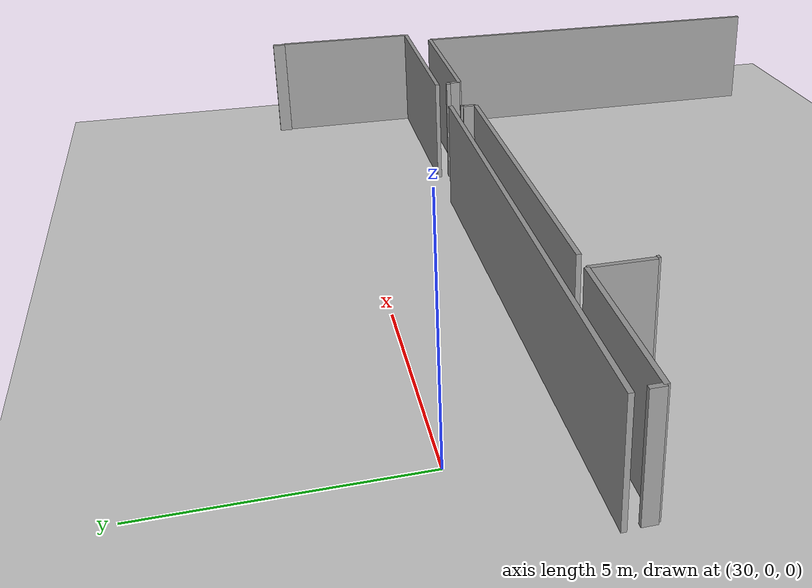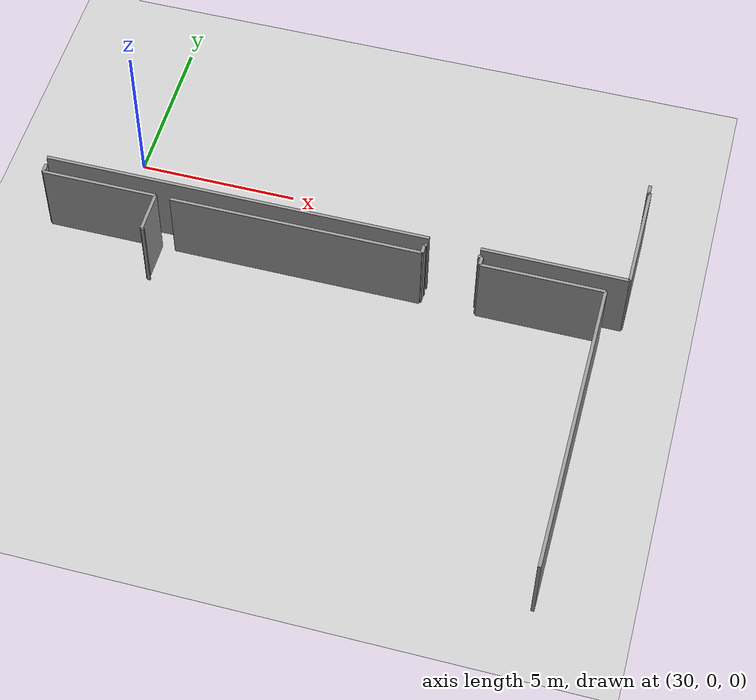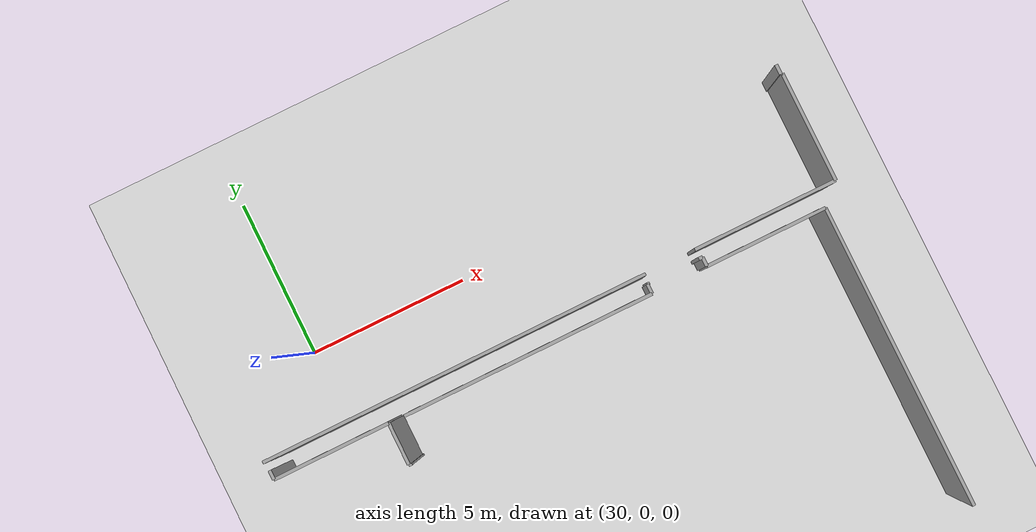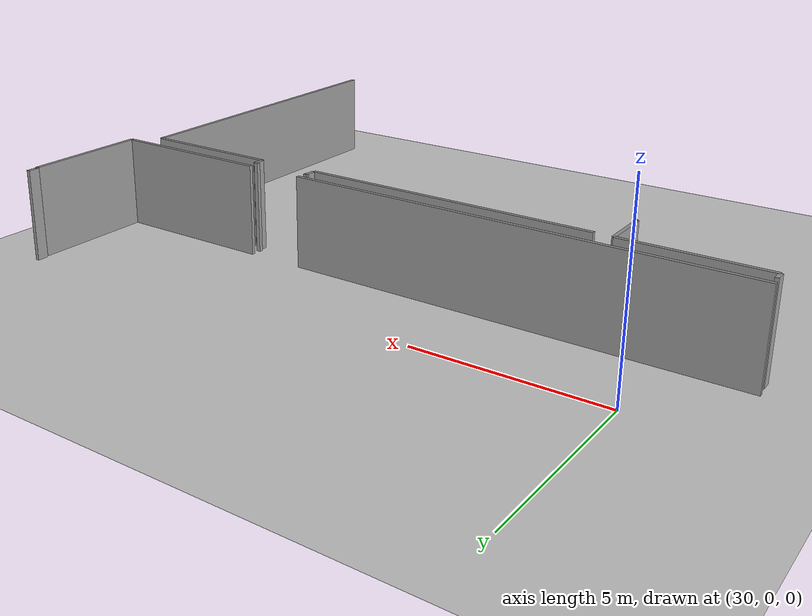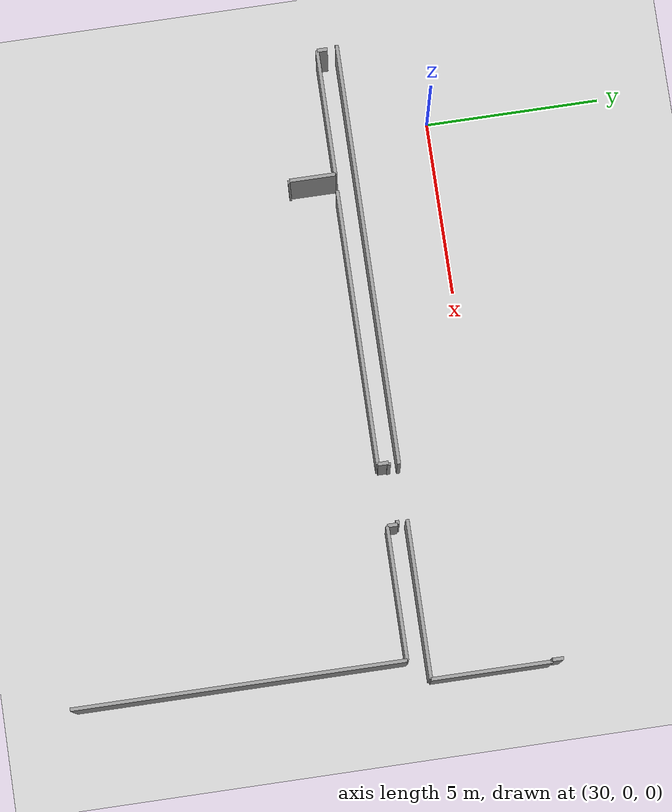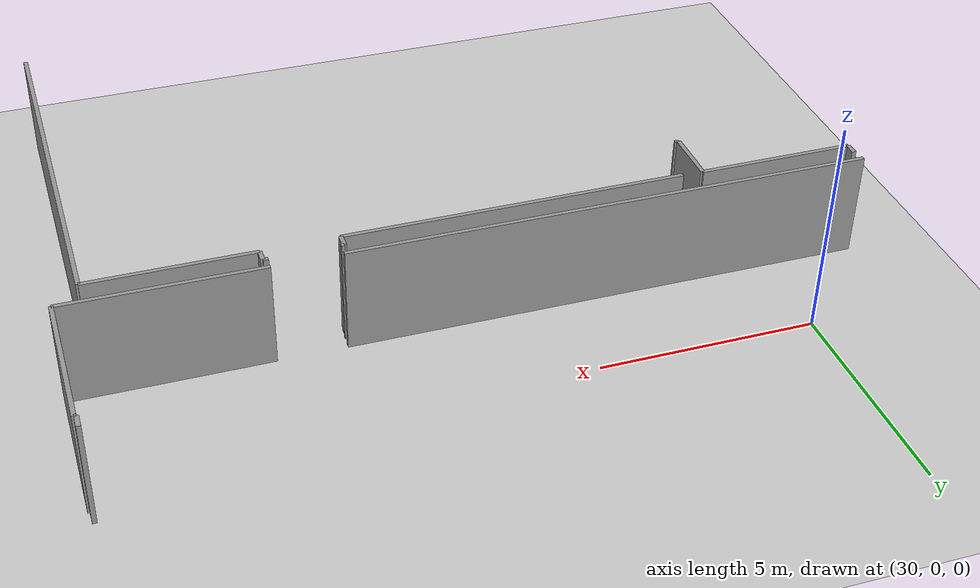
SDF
<sdf version="1.6">
 <world name="default">
  <model name="ground_plane">
   <static>1</static>
   <link name="link">
    <collision name="collision">
     <geometry><plane><normal>0 0 1</normal><size>100 100</size></plane></geometry>
     <surface><friction><ode><mu>100</mu><mu2>50</mu2></ode></friction></surface>
    </collision>
    <visual name="visual">
     <cast_shadows>0</cast_shadows>
     <geometry><plane><normal>0 0 1</normal><size>100 100</size></plane></geometry>
     <material>
      <script><uri>file://media/materials/scripts/gazebo.material</uri><name>Gazebo/Grey</name></script>
     </material>
    </visual>
   </link>
  </model>
  <model name="50045369">
   <static>1</static>
   <link name="Wall_179">
    <collision name="Wall_179_Collision">
     <geometry><box><size>0.289409297448 0.1 2.5</size></box></geometry>
     <pose>0.144704648724 0 1.25 0 0 0</pose>
    </collision>
    <visual name="Wall_179_Visual">
     <pose>0.144704648724 0 1.25 0 0 0</pose>
     <geometry><box><size>0.289409297448 0.1 2.5</size></box></geometry>
     <material>
      <script><uri>file://media/materials/scripts/gazebo.material</uri><name>Gazebo/Grey</name></script>
      <ambient>1 1 1 1</ambient>
     </material>
    </visual>
    <pose>73.8930443901 -24.5047186298 0 0 0 -1.57079632679</pose>
   </link>
   <link name="Wall_180">
    <collision name="Wall_180_Collision">
     <geometry><box><size>3.60471545232 0.1 2.5</size></box></geometry>
     <pose>1.80235772616 0 1.25 0 0 0</pose>
    </collision>
    <visual name="Wall_180_Visual">
     <pose>1.80235772616 0 1.25 0 0 0</pose>
     <geometry><box><size>3.60471545232 0.1 2.5</size></box></geometry>
     <material>
      <script><uri>file://media/materials/scripts/gazebo.material</uri><name>Gazebo/Grey</name></script>
      <ambient>1 1 1 1</ambient>
     </material>
    </visual>
    <pose>73.8930443901 -24.7941279273 0 0 0 0.0</pose>
   </link>
   <link name="Wall_181">
    <collision name="Wall_181_Collision">
     <geometry><box><size>1.30316799593 0.1 2.5</size></box></geometry>
     <pose>0.651583997966 0 1.25 0 0 0</pose>
    </collision>
    <visual name="Wall_181_Visual">
     <pose>0.651583997966 0 1.25 0 0 0</pose>
     <geometry><box><size>1.30316799593 0.1 2.5</size></box></geometry>
     <material>
      <script><uri>file://media/materials/scripts/gazebo.material</uri><name>Gazebo/Grey</name></script>
      <ambient>1 1 1 1</ambient>
     </material>
    </visual>
    <pose>77.4977598424 -24.7941279273 0 0 0 -1.57079632679</pose>
   </link>
   <link name="Wall_183">
    <collision name="Wall_183_Collision">
     <geometry><box><size>0.0582123224556 0.1 2.5</size></box></geometry>
     <pose>0.0291061612278 0 1.25 0 0 0</pose>
    </collision>
    <visual name="Wall_183_Visual">
     <pose>0.0291061612278 0 1.25 0 0 0</pose>
     <geometry><box><size>0.0582123224556 0.1 2.5</size></box></geometry>
     <material>
      <script><uri>file://media/materials/scripts/gazebo.material</uri><name>Gazebo/Grey</name></script>
      <ambient>1 1 1 1</ambient>
     </material>
    </visual>
    <pose>77.53983032 -26.0972959232 0 0 0 -1.57079632679</pose>
   </link>
   <link name="Wall_195">
    <collision name="Wall_195_Collision">
     <geometry><box><size>7.8402338661 0.1 2.5</size></box></geometry>
     <pose>3.92011693305 0 1.25 0 0 0</pose>
    </collision>
    <visual name="Wall_195_Visual">
     <pose>3.92011693305 0 1.25 0 0 0</pose>
     <geometry><box><size>7.8402338661 0.1 2.5</size></box></geometry>
     <material>
      <script><uri>file://media/materials/scripts/gazebo.material</uri><name>Gazebo/Grey</name></script>
      <ambient>1 1 1 1</ambient>
     </material>
    </visual>
    <pose>77.9713386928 -24.8096342665 0 0 0 0.0</pose>
   </link>
   <link name="Wall_196">
    <collision name="Wall_196_Collision">
     <geometry><box><size>0.305042737759 0.1 2.5</size></box></geometry>
     <pose>0.152521368879 0 1.25 0 0 0</pose>
    </collision>
    <visual name="Wall_196_Visual">
     <pose>0.152521368879 0 1.25 0 0 0</pose>
     <geometry><box><size>0.305042737759 0.1 2.5</size></box></geometry>
     <material>
      <script><uri>file://media/materials/scripts/gazebo.material</uri><name>Gazebo/Grey</name></script>
      <ambient>1 1 1 1</ambient>
     </material>
    </visual>
    <pose>85.8115725589 -24.8096342665 0 0 0 1.57079632679</pose>
   </link>
   <link name="Wall_197">
    <collision name="Wall_197_Collision">
     <geometry><box><size>0.0723205490769 0.1 2.5</size></box></geometry>
     <pose>0.0361602745385 0 1.25 0 0 0</pose>
    </collision>
    <visual name="Wall_197_Visual">
     <pose>0.0361602745385 0 1.25 0 0 0</pose>
     <geometry><box><size>0.0723205490769 0.1 2.5</size></box></geometry>
     <material>
      <script><uri>file://media/materials/scripts/gazebo.material</uri><name>Gazebo/Grey</name></script>
      <ambient>1 1 1 1</ambient>
     </material>
    </visual>
    <pose>85.8115725589 -24.5045915287 0 0 0 0.0</pose>
   </link>
   <link name="Wall_198">
    <collision name="Wall_198_Collision">
     <geometry><box><size>0.11629754377 0.1 2.5</size></box></geometry>
     <pose>0.0581487718852 0 1.25 0 0 0</pose>
    </collision>
    <visual name="Wall_198_Visual">
     <pose>0.0581487718852 0 1.25 0 0 0</pose>
     <geometry><box><size>0.11629754377 0.1 2.5</size></box></geometry>
     <material>
      <script><uri>file://media/materials/scripts/gazebo.material</uri><name>Gazebo/Grey</name></script>
      <ambient>1 1 1 1</ambient>
     </material>
    </visual>
    <pose>87.4411362842 -24.5045915287 0 0 0 0.0</pose>
   </link>
   <link name="Wall_199">
    <collision name="Wall_199_Collision">
     <geometry><box><size>0.292205522545 0.1 2.5</size></box></geometry>
     <pose>0.146102761272 0 1.25 0 0 0</pose>
    </collision>
    <visual name="Wall_199_Visual">
     <pose>0.146102761272 0 1.25 0 0 0</pose>
     <geometry><box><size>0.292205522545 0.1 2.5</size></box></geometry>
     <material>
      <script><uri>file://media/materials/scripts/gazebo.material</uri><name>Gazebo/Grey</name></script>
      <ambient>1 1 1 1</ambient>
     </material>
    </visual>
    <pose>87.557433828 -24.5045915287 0 0 0 -1.57079632679</pose>
   </link>
   <link name="Wall_200">
    <collision name="Wall_200_Collision">
     <geometry><box><size>3.76435448508 0.1 2.5</size></box></geometry>
     <pose>1.88217724254 0 1.25 0 0 0</pose>
    </collision>
    <visual name="Wall_200_Visual">
     <pose>1.88217724254 0 1.25 0 0 0</pose>
     <geometry><box><size>3.76435448508 0.1 2.5</size></box></geometry>
     <material>
      <script><uri>file://media/materials/scripts/gazebo.material</uri><name>Gazebo/Grey</name></script>
      <ambient>1 1 1 1</ambient>
     </material>
    </visual>
    <pose>87.557433828 -24.7967970513 0 0 0 0.0</pose>
   </link>
   <link name="Wall_201">
    <collision name="Wall_201_Collision">
     <geometry><box><size>9.39722284007 0.1 2.5</size></box></geometry>
     <pose>4.69861142004 0 1.25 0 0 0</pose>
    </collision>
    <visual name="Wall_201_Visual">
     <pose>4.69861142004 0 1.25 0 0 0</pose>
     <geometry><box><size>9.39722284007 0.1 2.5</size></box></geometry>
     <material>
      <script><uri>file://media/materials/scripts/gazebo.material</uri><name>Gazebo/Grey</name></script>
      <ambient>1 1 1 1</ambient>
     </material>
    </visual>
    <pose>91.3217883131 -24.7967970513 0 0 0 -1.57079632679</pose>
   </link>
   <link name="Wall_224">
    <collision name="Wall_224_Collision">
     <geometry><box><size>0.311397794795 0.1 2.5</size></box></geometry>
     <pose>0.155698897398 0 1.25 0 0 0</pose>
    </collision>
    <visual name="Wall_224_Visual">
     <pose>0.155698897398 0 1.25 0 0 0</pose>
     <geometry><box><size>0.311397794795 0.1 2.5</size></box></geometry>
     <material>
      <script><uri>file://media/materials/scripts/gazebo.material</uri><name>Gazebo/Grey</name></script>
      <ambient>1 1 1 1</ambient>
     </material>
    </visual>
    <pose>91.8900575133 -20.5089129675 0 0 0 -1.57079632679</pose>
   </link>
   <link name="Wall_225">
    <collision name="Wall_225_Collision">
     <geometry><box><size>0.0439769946935 0.1 2.5</size></box></geometry>
     <pose>0.0219884973468 0 1.25 0 0 0</pose>
    </collision>
    <visual name="Wall_225_Visual">
     <pose>0.0219884973468 0 1.25 0 0 0</pose>
     <geometry><box><size>0.0439769946935 0.1 2.5</size></box></geometry>
     <material>
      <script><uri>file://media/materials/scripts/gazebo.material</uri><name>Gazebo/Grey</name></script>
      <ambient>1 1 1 1</ambient>
     </material>
    </visual>
    <pose>91.8900575133 -20.8203107623 0 0 0 0.0</pose>
   </link>
   <link name="Wall_226">
    <collision name="Wall_226_Collision">
     <geometry><box><size>3.40135362715 0.1 2.5</size></box></geometry>
     <pose>1.70067681357 0 1.25 0 0 0</pose>
    </collision>
    <visual name="Wall_226_Visual">
     <pose>1.70067681357 0 1.25 0 0 0</pose>
     <geometry><box><size>3.40135362715 0.1 2.5</size></box></geometry>
     <material>
      <script><uri>file://media/materials/scripts/gazebo.material</uri><name>Gazebo/Grey</name></script>
      <ambient>1 1 1 1</ambient>
     </material>
    </visual>
    <pose>91.934034508 -20.8203107623 0 0 0 -1.57079632679</pose>
   </link>
   <link name="Wall_227">
    <collision name="Wall_227_Collision">
     <geometry><box><size>4.47484986178 0.1 2.5</size></box></geometry>
     <pose>2.23742493089 0 1.25 0 0 0</pose>
    </collision>
    <visual name="Wall_227_Visual">
     <pose>2.23742493089 0 1.25 0 0 0</pose>
     <geometry><box><size>4.47484986178 0.1 2.5</size></box></geometry>
     <material>
      <script><uri>file://media/materials/scripts/gazebo.material</uri><name>Gazebo/Grey</name></script>
      <ambient>1 1 1 1</ambient>
     </material>
    </visual>
    <pose>91.934034508 -24.2216643894 0 0 0 3.14159265359</pose>
   </link>
   <link name="Wall_228">
    <collision name="Wall_228_Collision">
     <geometry><box><size>12.0800737187 0.1 2.5</size></box></geometry>
     <pose>6.04003685933 0 1.25 0 0 0</pose>
    </collision>
    <visual name="Wall_228_Visual">
     <pose>6.04003685933 0 1.25 0 0 0</pose>
     <geometry><box><size>12.0800737187 0.1 2.5</size></box></geometry>
     <material>
      <script><uri>file://media/materials/scripts/gazebo.material</uri><name>Gazebo/Grey</name></script>
      <ambient>1 1 1 1</ambient>
     </material>
    </visual>
    <pose>85.894823806 -24.2216643894 0 0 0 3.14159265359</pose>
   </link>
   <pose>-45.95 21.8978774109 0 0 0 0</pose>
  </model>
 </world>
</sdf>
